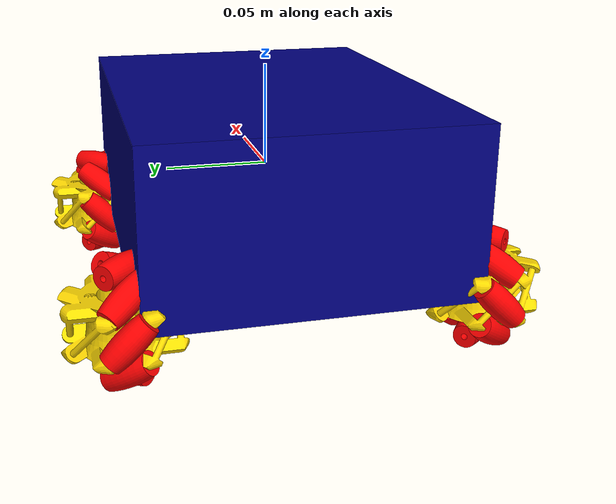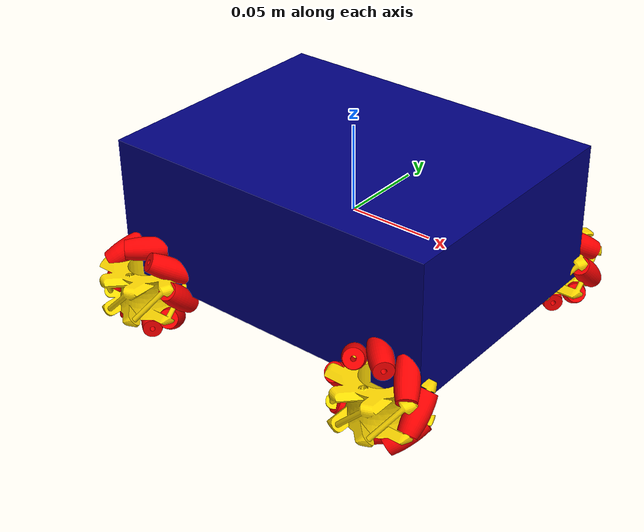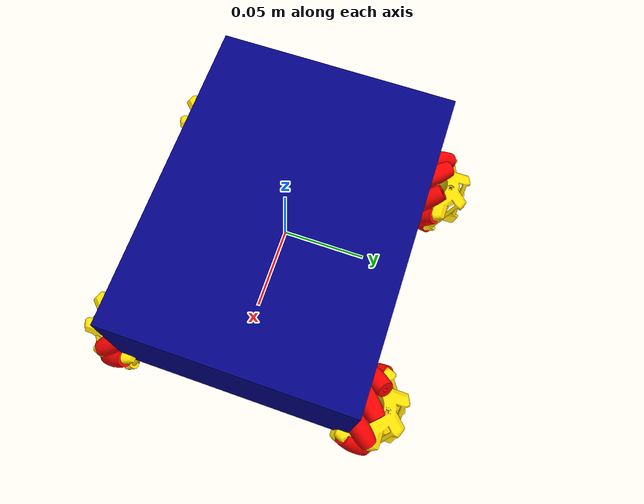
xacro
<?xml version="1.0"?>
<robot xmlns:xacro="http://www.ros.org/wiki/xacro" name="mecanum_bot">

  <xacro:property name="mesh_pkg" value="mecanum_bot" />

  <!-- ===================== chassis geometry ===================== -->
  <!-- Box base_link, 20cm x 15cm x 8cm, matching your original scale. -->
  <xacro:property name="base_x"     value="0.20" />
  <xacro:property name="base_y"     value="0.15" />
  <xacro:property name="base_z"     value="0.08" />
  <xacro:property name="base_mass"  value="0.4"  />

  <!-- Wheel geometry from the SolidWorks export -->
  <xacro:property name="wheel_radius" value="0.0267" />
  <xacro:property name="wheel_z_gap"  value="0.005" />  <!-- ground clearance under the box -->

  <xacro:property name="wheel_stance" value="0.08" />

  <xacro:property name="wheel_z" value="${-base_z/2}" />

  <xacro:include filename="$(find mecanum_bot)/urdf/mecanum_wheel.xacro" />

  <!-- ===================== base_link ===================== -->
  <link name="base_link">
    <visual>
      <origin xyz="0 0 0" rpy="0 0 0" />
      <geometry>
        <box size="${base_x} ${base_y} ${base_z}" />
      </geometry>
      <material name="blue">
        <color rgba="0.0 0.0 0.5 1.0"/>
      </material>
    </visual>
    <collision>
      <origin xyz="0 0 0" rpy="0 0 0" />
      <geometry>
        <box size="${base_x} ${base_y} ${base_z}" />
      </geometry>
    </collision>
    <inertial>
      <origin xyz="0 0 0" rpy="0 0 0"/>
      <mass value="${base_mass}" />
      <inertia ixx="0.000963" ixy="0.0" ixz="0.0" iyy="0.001547" iyz="0.0" izz="0.002083" />
    </inertial>
  </link>

  <gazebo reference="base_link">
    <material>Gazebo/Blue</material>
  </gazebo>

  <!-- ===================== four wheels, square layout ===================== -->
  <xacro:mecanum_wheel prefix="front_left"  parent="base_link"
    xyz="${wheel_stance} ${wheel_stance} ${wheel_z}"   roll_sign="1"  mesh_pkg="${mesh_pkg}" />
  <xacro:mecanum_wheel prefix="front_right" parent="base_link"
    xyz="${wheel_stance} ${-wheel_stance} ${wheel_z}"  roll_sign="-1" mesh_pkg="${mesh_pkg}" />
  <xacro:mecanum_wheel prefix="rear_left"   parent="base_link"
    xyz="${-wheel_stance} ${wheel_stance} ${wheel_z}"  roll_sign="-1" mesh_pkg="${mesh_pkg}" />
  <xacro:mecanum_wheel prefix="rear_right"  parent="base_link"
    xyz="${-wheel_stance} ${-wheel_stance} ${wheel_z}" roll_sign="1"  mesh_pkg="${mesh_pkg}" />

  <!-- ===================== ros2_control ===================== -->
  <ros2_control name="GazeboSystem" type="system">
    <hardware>
      <plugin>gazebo_ros2_control/GazeboSystem</plugin>
    </hardware>
    <joint name="front_left_wheel_joint">
      <command_interface name="velocity"><param name="min">-10</param><param name="max">10</param></command_interface>
      <state_interface name="position"/><state_interface name="velocity"/>
    </joint>
    <joint name="front_right_wheel_joint">
      <command_interface name="velocity"><param name="min">-10</param><param name="max">10</param></command_interface>
      <state_interface name="position"/><state_interface name="velocity"/>
    </joint>
    <joint name="rear_left_wheel_joint">
      <command_interface name="velocity"><param name="min">-10</param><param name="max">10</param></command_interface>
      <state_interface name="position"/><state_interface name="velocity"/>
    </joint>
    <joint name="rear_right_wheel_joint">
      <command_interface name="velocity"><param name="min">-10</param><param name="max">10</param></command_interface>
      <state_interface name="position"/><state_interface name="velocity"/>
    </joint>
  </ros2_control>

  <gazebo>
    <plugin name="gazebo_ros2_control" filename="libgazebo_ros2_control.so">
      <parameters>$(find mecanum_bot)/config/mecanum_controllers.yaml</parameters>
    </plugin>
  </gazebo>

</robot>

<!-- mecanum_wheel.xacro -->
<robot xmlns:xacro="http://www.ros.org/wiki/xacro">

  <xacro:macro name="mecanum_wheel" params="prefix parent xyz roll_sign mesh_pkg">

    <!-- ============ HUB ============ -->
    <link name="${prefix}_wheel_link">
      <visual>
        <origin xyz="0 0 0" rpy="1.5708 0 0" />
        <geometry>
          <mesh filename="package://${mesh_pkg}/meshes/wheel_hub.STL" scale="1 1 1"/>
        </geometry>
        <material name="yellow">
          <color rgba="1.0 0.85 0.0 1.0" />
        </material>
      </visual>
      <collision>
        <origin xyz="0 0 0" rpy="1.5708 0 0" />
        <geometry>
          <!-- Simple cylinder collision instead of the roller-covered mesh:
               much cheaper and far more stable for ODE contact solving. -->
          <cylinder radius="0.0267" length="0.024" />
        </geometry>
      </collision>
      <inertial>
        <origin xyz="0 0 0" rpy="0 0 0" />
        <mass value="0.0185" />
        <inertia ixx="2.78161E-06" ixy="0.0" ixz="0.0"
                 iyy="4.90407E-06" iyz="0.0" izz="2.78161E-06" />
      </inertial>
    </link>

    <joint name="${prefix}_wheel_joint" type="continuous">
      <parent link="${parent}" />
      <child link="${prefix}_wheel_link" />
      <origin xyz="${xyz}" rpy="1.5708 0 0" />
      <!-- Rotation axis is the hub's local Z, which after the rpy above
           now points along the parent's Y (sideways), which is the
           actual wheel rolling axis. -->
      <axis xyz="0 1 0" />
      <dynamics damping="0.05" friction="0.05"/>
    </joint>

    <gazebo reference="${prefix}_wheel_link">
      <material>Gazebo/Yellow</material>
    </gazebo>

    <!-- ============ ROLLERS (verbatim from sw2urdf export) ============ -->
    <xacro:roller prefix="${prefix}" num="1" mesh_pkg="${mesh_pkg}"
      x="0.0225"    y="0.0"        rr="-0.7854" rp="0" ry="0"       roll_sign="${roll_sign}"/>
    <xacro:roller prefix="${prefix}" num="2" mesh_pkg="${mesh_pkg}"
      x="0.015909"  y="0.015911"   rr="-0.68472" rp="-0.42053" ry="0.32175" roll_sign="${roll_sign}"/>
    <xacro:roller prefix="${prefix}" num="3" mesh_pkg="${mesh_pkg}"
      x="0.0"       y="0.0225"     rr="0.7854"  rp="0" ry="-1.5708"  roll_sign="${roll_sign}"/>
    <xacro:roller prefix="${prefix}" num="4" mesh_pkg="${mesh_pkg}"
      x="-0.015911" y="0.015909"   rr="0.7854"  rp="0" ry="-0.7854"  roll_sign="${roll_sign}"/>
    <xacro:roller prefix="${prefix}" num="5" mesh_pkg="${mesh_pkg}"
      x="-0.0225"   y="0.0"        rr="0.7854"  rp="0" ry="0"        roll_sign="${roll_sign}"/>
    <xacro:roller prefix="${prefix}" num="6" mesh_pkg="${mesh_pkg}"
      x="-0.015909" y="-0.015911"  rr="0.7854"  rp="0" ry="0.7854"   roll_sign="${roll_sign}"/>
    <xacro:roller prefix="${prefix}" num="7" mesh_pkg="${mesh_pkg}"
      x="0.0"       y="-0.0225"    rr="0.7854"  rp="0" ry="1.5708"   roll_sign="${roll_sign}"/>
    <xacro:roller prefix="${prefix}" num="8" mesh_pkg="${mesh_pkg}"
      x="0.015911"  y="-0.015909"  rr="0.7854"  rp="0" ry="2.3562"   roll_sign="${roll_sign}"/>

  </xacro:macro>

  <xacro:macro name="roller" params="prefix num mesh_pkg x y rr rp ry roll_sign">
    <link name="${prefix}_roller_${num}">
      <visual>
        <origin xyz="0 0 0" rpy="0 0 0" />
        <geometry>
          <mesh filename="package://${mesh_pkg}/meshes/roller_${num}.STL" scale="1 1 1"/>
        </geometry>
        <material name="red">
          <color rgba="1.0 0.0 0.0 1.0" />
        </material>
      </visual>
      <collision>
        <origin xyz="0 0 0" rpy="0 0 0" />
        <geometry>
          <cylinder radius="0.0065" length="0.023" />
        </geometry>
      </collision>
      <inertial>
        <mass value="0.0025483" />
        <inertia ixx="1.2617E-07" ixy="0.0" ixz="0.0"
                 iyy="1.2617E-07" iyz="0.0" izz="5.1291E-08" />
      </inertial>
    </link>

    <joint name="${prefix}_roller_${num}_joint" type="continuous">
      <parent link="${prefix}_wheel_link" />
      <child link="${prefix}_roller_${num}" />
      <!-- roll_sign = -1 mirrors the ring across the hub's local X axis:
           negate y and negate the roll+yaw components accordingly. -->
      <origin xyz="${x} ${roll_sign * y} 0" rpy="${roll_sign * rr} ${rp} ${roll_sign * ry}" />
      <axis xyz="0 0 1" />
      <dynamics damping="0.001" friction="0.002"/>
    </joint>

    <gazebo reference="${prefix}_roller_${num}">
      <material>Gazebo/Red</material>
      <mu1>2.0</mu1>
      <mu2>2.0</mu2>
      <kp>1000000.0</kp>
      <kd>100.0</kd>
      <minDepth>0.001</minDepth>
      <maxVel>0.1</maxVel>
    </gazebo>
  </xacro:macro>

</robot>
